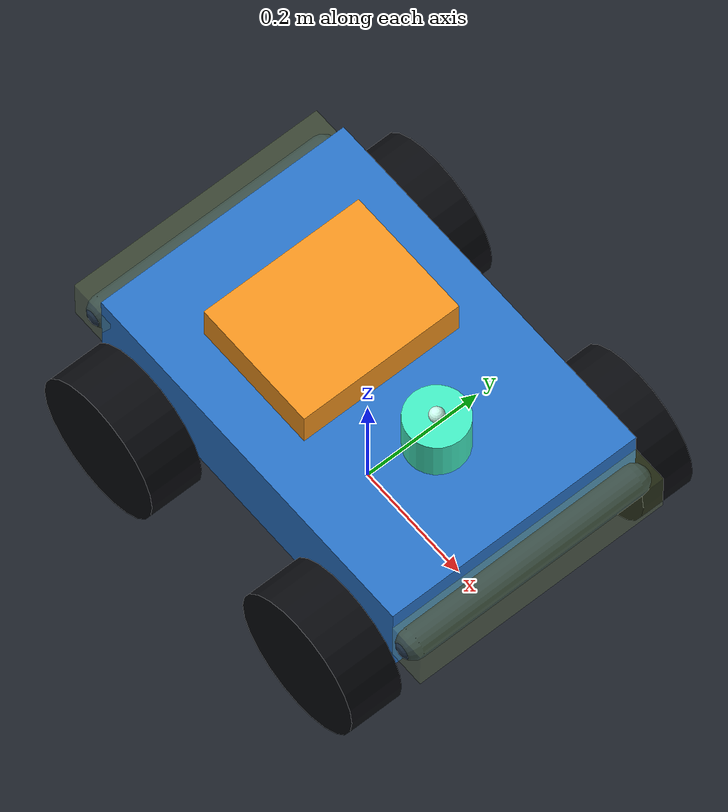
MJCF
<?xml version="1.0" encoding="utf-8"?>
<mujoco model="droid_blocks">
  <compiler angle="radian" autolimits="true" inertiafromgeom="auto"/>
  <option timestep="0.002" gravity="0 0 -9.81" integrator="implicitfast"
          cone="elliptic" iterations="40"/>

  <default>
    <geom contype="1" conaffinity="1" condim="4"
          friction="0.95 0.01 0.001" solref="0.008 1"
          solimp="0.9 0.95 0.001"/>
    <joint damping="0.12" armature="0.002"/>
    <motor ctrllimited="true" ctrlrange="-4 4"/>
  </default>

  <asset>
    <material name="ground_material" rgba="0.11 0.13 0.16 1"/>
    <material name="chassis_material" rgba="0.16 0.45 0.78 1"/>
    <material name="power_material" rgba="0.95 0.58 0.12 1"/>
    <material name="sensor_material" rgba="0.26 0.92 0.76 1"/>
    <material name="wheel_material" rgba="0.035 0.04 0.055 1"/>
  </asset>

  <worldbody>
    <light name="key_light" directional="true" pos="0 0 6" dir="-0.2 -0.25 -1"/>
    <geom name="ground" type="plane" size="25 6 0.1"
          material="ground_material" friction="1.1 0.01 0.001"/>
    <site name="track_start" type="box" pos="-20 0 0.006" size="0.025 2.5 0.005"
          rgba="0.25 0.85 0.65 0.8"/>
    <site name="track_finish" type="box" pos="20 0 0.006" size="0.025 2.5 0.005"
          rgba="0.95 0.45 0.25 0.8"/>

    <body name="droid" pos="0 0 0.24">
      <freejoint name="root"/>
      <geom name="chassis" type="box" size="0.32 0.22 0.075"
            density="125" material="chassis_material"/>
      <geom name="front_bumper" type="capsule" fromto="0.34 -0.2 0 0.34 0.2 0"
            size="0.025" density="80" rgba="0.12 0.19 0.27 1"/>
      <geom name="rear_bumper" type="capsule" fromto="-0.34 -0.2 0 -0.34 0.2 0"
            size="0.025" density="80" rgba="0.12 0.19 0.27 1"/>
      <site name="touch_front_site" type="box" pos="0.34 0 0"
            size="0.04 0.22 0.04" rgba="0.72 0.84 0.38 0.08"/>
      <site name="touch_rear_site" type="box" pos="-0.34 0 0"
            size="0.04 0.22 0.04" rgba="0.72 0.84 0.38 0.08"/>

      <body name="module_power" pos="-0.08 0 0.105">
        <geom name="power_pack" type="box" size="0.11 0.14 0.035"
              density="220" material="power_material"/>
      </body>

      <body name="module_sensor" pos="0.15 0 0.115">
        <geom name="sensor_pod" type="cylinder" size="0.05 0.04"
              density="160" material="sensor_material"/>
        <site name="light_sensor_site" type="sphere" pos="0 0 0.045" size="0.012"
              rgba="0.8 1 0.94 1"/>
      </body>

      <body name="module_front_left_wheel" pos="0.22 0.265 -0.11">
        <joint name="wheel_front_left_joint" type="hinge" axis="0 1 0"/>
        <geom name="wheel_front_left" type="cylinder" size="0.12 0.045"
              quat="0.7071068 0.7071068 0 0" density="250"
              material="wheel_material" friction="1.25 0.012 0.001"/>
      </body>

      <body name="module_front_right_wheel" pos="0.22 -0.265 -0.11">
        <joint name="wheel_front_right_joint" type="hinge" axis="0 1 0"/>
        <geom name="wheel_front_right" type="cylinder" size="0.12 0.045"
              quat="0.7071068 0.7071068 0 0" density="250"
              material="wheel_material" friction="1.25 0.012 0.001"/>
      </body>

      <body name="module_rear_left_wheel" pos="-0.22 0.265 -0.11">
        <joint name="wheel_rear_left_joint" type="hinge" axis="0 1 0"/>
        <geom name="wheel_rear_left" type="cylinder" size="0.12 0.045"
              quat="0.7071068 0.7071068 0 0" density="250"
              material="wheel_material" friction="1.25 0.012 0.001"/>
      </body>

      <body name="module_rear_right_wheel" pos="-0.22 -0.265 -0.11">
        <joint name="wheel_rear_right_joint" type="hinge" axis="0 1 0"/>
        <geom name="wheel_rear_right" type="cylinder" size="0.12 0.045"
              quat="0.7071068 0.7071068 0 0" density="250"
              material="wheel_material" friction="1.25 0.012 0.001"/>
      </body>
    </body>
  </worldbody>

  <actuator>
    <motor name="drive_front_left" joint="wheel_front_left_joint" gear="1"/>
    <motor name="drive_front_right" joint="wheel_front_right_joint" gear="1"/>
    <motor name="drive_rear_left" joint="wheel_rear_left_joint" gear="1"/>
    <motor name="drive_rear_right" joint="wheel_rear_right_joint" gear="1"/>
  </actuator>

  <sensor>
    <touch name="touch_front_force" site="touch_front_site"/>
    <touch name="touch_rear_force" site="touch_rear_site"/>
    <jointpos name="encoder_front_left_position" joint="wheel_front_left_joint"/>
    <jointvel name="encoder_front_left_velocity" joint="wheel_front_left_joint"/>
    <jointpos name="encoder_front_right_position" joint="wheel_front_right_joint"/>
    <jointvel name="encoder_front_right_velocity" joint="wheel_front_right_joint"/>
    <jointpos name="encoder_rear_left_position" joint="wheel_rear_left_joint"/>
    <jointvel name="encoder_rear_left_velocity" joint="wheel_rear_left_joint"/>
    <jointpos name="encoder_rear_right_position" joint="wheel_rear_right_joint"/>
    <jointvel name="encoder_rear_right_velocity" joint="wheel_rear_right_joint"/>
  </sensor>
</mujoco>
